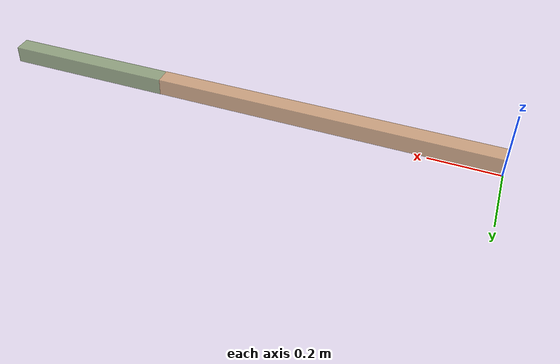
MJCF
<mujoco model="planer_2r">
    <compiler angle="radian" meshdir="assets" autolimits="true" balanceinertia="false"/>
    <option integrator="implicitfast" >
    </option>

    <worldbody>

            <body name="link1" pos="0.0 0 0.05" euler="0 0 0">
                <inertial mass="1" pos="0.5 0 0" euler="0 1.57 0" diaginertia="0.00166 0.08416 0.08416"/>
                <joint name="joint1" type="hinge" axis="0 0 1" range="-3.14 3.14"/>
                <geom type="box" size="0.025 0.025 0.5" pos="0.5 0.0 0.0" euler="0 1.57 0" rgba="0.8 0.6 0.4 0.75"/>

                    <body name="link2" pos="1.0 0 0" euler="0 0 0">
                        <joint name="joint2" type="hinge" axis="0 0 1" range="-3.14 3.14"/>
                        <geom type="box" size="0.025 0.025 0.25" pos="0.25 0 0.0" euler="0 1.57 0" rgba="0.5 0.6 0.4 0.75"/>
                        <inertial mass="2" pos="0.25 0 0" euler="0 1.57 0" diaginertia="0.0033 0.04333 0.04333"/>

                    </body>
            </body>
    </worldbody>

    <actuator>
        <general name="pos_actuator1" joint="joint1" ctrlrange="-3.14 3.14" ctrllimited="true"/>
        <general name="pos_actuator2" joint="joint2" ctrlrange="-3.14 3.14" ctrllimited="true"/>
    </actuator>

    <keyframe>
        <key name="home" qpos="0 0" ctrl="0 0"/>
    </keyframe>
</mujoco>
